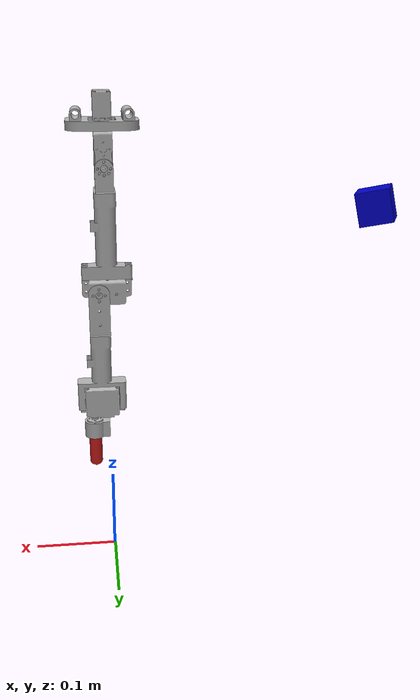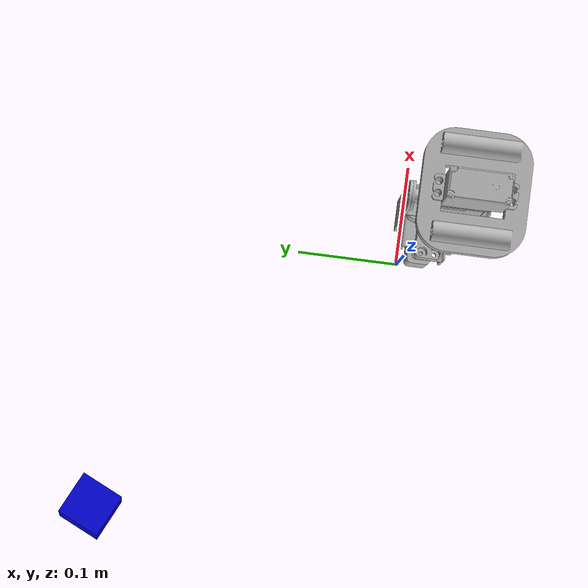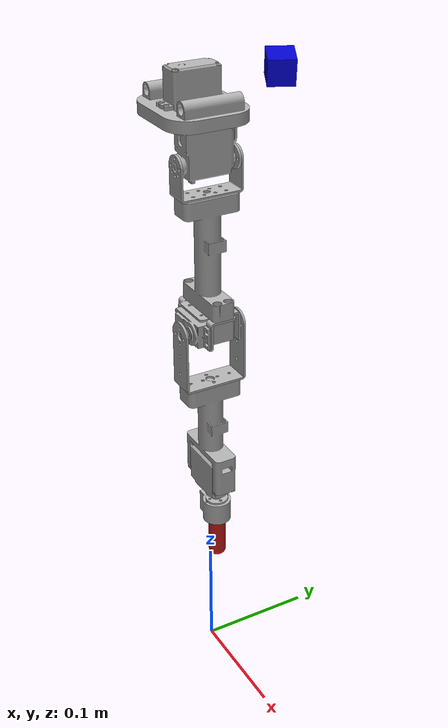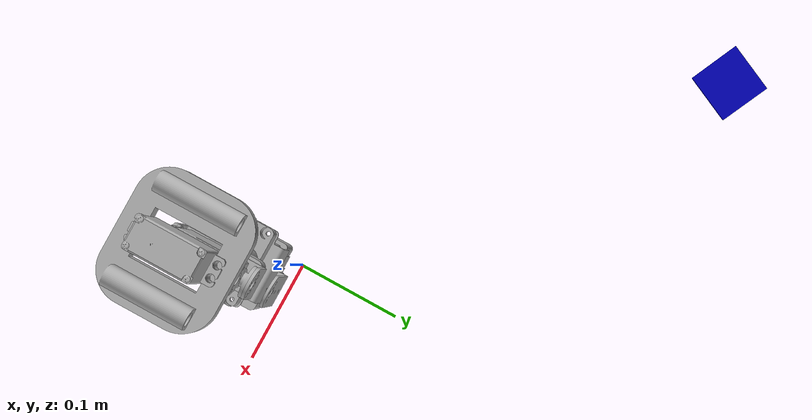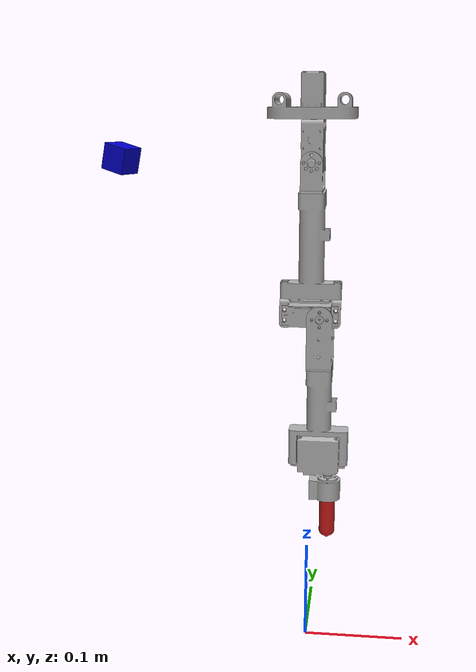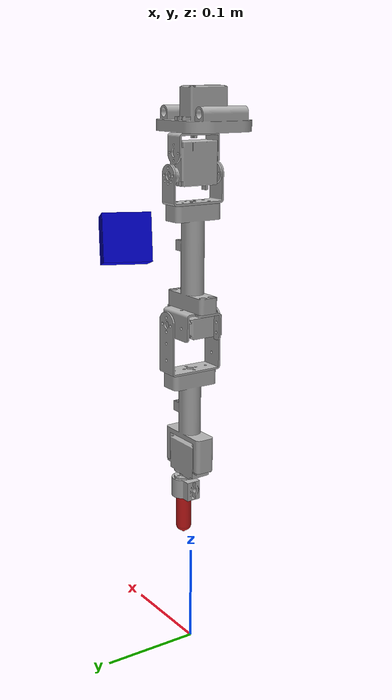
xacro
<?xml version="1.0" ?>
<!-- SINH TỰ ĐỘNG bởi scripts/rl/newarm_make_sim.py — đừng sửa tay. -->
<robot name="newarm" xmlns:xacro="http://www.ros.org/wiki/xacro">

<xacro:arg name="elbow_lower" default="-0.523599"/>
<xacro:arg name="elbow_upper" default="2.617994"/>
<xacro:include filename="$(find visual_servoing)/urdf/newarm/materials.xacro" />
<xacro:include filename="$(find visual_servoing)/urdf/newarm/newarm.ros2_control.xacro" />
<xacro:include filename="$(find visual_servoing)/urdf/newarm/newarm.gazebo.xacro" />

<!-- base_link cố định vào world: trục J1 trùng trục Z world, tay hướng về +X -->
<link name="world"/>
<joint name="world_fixed" type="fixed">
  <origin xyz="0.024973 0.01315 0.1" rpy="0 0 1.570796"/>
  <parent link="world"/>
  <child link="base_link"/>
</joint>

<link name="base_link">
  <inertial>
    <origin xyz="-0.013099 0.035685 0.430136" rpy="0 0 0"/>
    <mass value="0.417679"/>
    <inertia ixx="0.000178" iyy="0.000285" izz="0.000442" ixy="-0" iyz="0" ixz="-0"/>
  </inertial>
  <visual>
    <origin xyz="0 0 0" rpy="0 0 0"/>
    <geometry>
      <mesh filename="package://visual_servoing/meshes/newarm/base_link.stl" scale="0.001 0.001 0.001"/>
    </geometry>
    <material name="silver"/>
  </visual>
</link>

<link name="DigitalServo8120_1">
  <inertial>
    <origin xyz="-0.0039 0.023711 0.010048" rpy="0 0 0"/>
    <mass value="0.252337"/>
    <inertia ixx="6.8e-05" iyy="4.1e-05" izz="4.3e-05" ixy="0" iyz="-1e-06" ixz="0"/>
  </inertial>
  <visual>
    <origin xyz="0.009205 -0.011786 -0.433355" rpy="0 0 0"/>
    <geometry>
      <mesh filename="package://visual_servoing/meshes/newarm/DigitalServo8120_1.stl" scale="0.001 0.001 0.001"/>
    </geometry>
    <material name="silver"/>
  </visual>
</link>

<link name="rds3120_1">
  <inertial>
    <origin xyz="-0.000427 0.000041 -0.022017" rpy="0 0 0"/>
    <mass value="0.0385774"/>
    <inertia ixx="7e-06" iyy="1.3e-05" izz="8e-06" ixy="-0" iyz="0" ixz="-0"/>
  </inertial>
  <visual>
    <origin xyz="0.01315 -0.024973 -0.418382" rpy="0 0 0"/>
    <geometry>
      <mesh filename="package://visual_servoing/meshes/newarm/rds3120_1.stl" scale="0.001 0.001 0.001"/>
    </geometry>
    <material name="silver"/>
  </visual>
</link>

<link name="rds3120_support_1">
  <inertial>
    <origin xyz="-0.0258 0.017355 0" rpy="1.570796 0 0"/>
    <mass value="0.0114569"/>
    <inertia ixx="2e-06" iyy="7e-06" izz="6e-06" ixy="0" iyz="-0" ixz="0"/>
  </inertial>
  <visual>
    <origin xyz="-0.013095 0.385135 -0.024973" rpy="1.570796 0 0"/>
    <geometry>
      <mesh filename="package://visual_servoing/meshes/newarm/rds3120_support_1.stl" scale="0.001 0.001 0.001"/>
    </geometry>
    <material name="silver"/>
  </visual>
</link>

<link name="link1_1">
  <inertial>
    <origin xyz="-0.014829 0.071625 0.026919" rpy="1.570796 0 0"/>
    <mass value="0.458776"/>
    <inertia ixx="0.000573" iyy="0.000566" izz="7.5e-05" ixy="0" iyz="0" ixz="-0"/>
  </inertial>
  <visual>
    <origin xyz="-0.002145 0.380185 0.002027" rpy="1.570796 0 0"/>
    <geometry>
      <mesh filename="package://visual_servoing/meshes/newarm/link1_1.stl" scale="0.001 0.001 0.001"/>
    </geometry>
    <material name="silver"/>
  </visual>
</link>

<link name="Servo_mg996_BracketM_1">
  <inertial>
    <origin xyz="0.017684 0.410153 0.102027" rpy="1.570796 0 0"/>
    <mass value="0.001"/>
    <inertia ixx="1e-08" iyy="1e-08" izz="1e-08" ixy="0" iyz="0" ixz="0"/>
  </inertial>
  <visual>
    <origin xyz="0.017684 0.410153 0.102027" rpy="1.570796 0 0"/>
    <geometry>
      <mesh filename="package://visual_servoing/meshes/newarm/Servo_mg996_BracketM_1.stl" scale="0.001 0.001 0.001"/>
    </geometry>
    <material name="silver"/>
  </visual>
</link>

<link name="MG996R_servo_1">
  <inertial>
    <origin xyz="0.008485 0.11762 0.146787" rpy="1.570796 0 0"/>
    <mass value="0.240069"/>
    <inertia ixx="4e-05" iyy="3.6e-05" izz="6.1e-05" ixy="-1e-06" iyz="0" ixz="0"/>
  </inertial>
  <visual>
    <origin xyz="0.025684 0.360903 0.121897" rpy="1.570796 0 0"/>
    <geometry>
      <mesh filename="package://visual_servoing/meshes/newarm/MG996R_servo_1.stl" scale="0.001 0.001 0.001"/>
    </geometry>
    <material name="silver"/>
  </visual>
</link>

<link name="banhrang_mg996_1">
  <inertial>
    <origin xyz="-0.000674 0.151788 0.131952" rpy="1.570796 0 0"/>
    <mass value="0.001"/>
    <inertia ixx="1e-08" iyy="1e-08" izz="1e-08" ixy="-0" iyz="0" ixz="0"/>
  </inertial>
  <visual>
    <origin xyz="0.041184 0.395053 0.116897" rpy="1.570796 0 0"/>
    <geometry>
      <mesh filename="package://visual_servoing/meshes/newarm/banhrang_mg996_1.stl" scale="0.001 0.001 0.001"/>
    </geometry>
    <material name="silver"/>
  </visual>
</link>

<link name="ServoBracketU_1">
  <inertial>
    <origin xyz="0.043184 0.395053 0.116897" rpy="1.570796 0 0"/>
    <mass value="0.001"/>
    <inertia ixx="1e-08" iyy="1e-08" izz="1e-08" ixy="0" iyz="0" ixz="0"/>
  </inertial>
  <visual>
    <origin xyz="0.043184 0.395053 0.116897" rpy="1.570796 0 0"/>
    <geometry>
      <mesh filename="package://visual_servoing/meshes/newarm/ServoBracketU_1.stl" scale="0.001 0.001 0.001"/>
    </geometry>
    <material name="silver"/>
  </visual>
</link>

<link name="link2_1">
  <inertial>
    <origin xyz="-0.018589 0.241827 0.182058" rpy="1.570796 0 0"/>
    <mass value="0.399605"/>
    <inertia ixx="0.000416" iyy="0.000382" izz="0.0001" ixy="0" iyz="3e-06" ixz="-0"/>
  </inertial>
  <visual>
    <origin xyz="-0.001416 0.395053 0.166897" rpy="1.570796 0 0"/>
    <geometry>
      <mesh filename="package://visual_servoing/meshes/newarm/link2_1.stl" scale="0.001 0.001 0.001"/>
    </geometry>
    <material name="silver"/>
  </visual>
</link>

<link name="MG996R_servo__1__1">
  <inertial>
    <origin xyz="0.004982 0.317464 0.281776" rpy="1.570796 0 0"/>
    <mass value="0.240069"/>
    <inertia ixx="6.1e-05" iyy="3.6e-05" izz="4e-05" ixy="-0" iyz="-1e-06" ixz="-0"/>
  </inertial>
  <visual>
    <origin xyz="0.022169 0.419214 0.266897" rpy="1.570796 0 0"/>
    <geometry>
      <mesh filename="package://visual_servoing/meshes/newarm/MG996R_servo__1__1.stl" scale="0.001 0.001 0.001"/>
    </geometry>
    <material name="silver"/>
  </visual>
</link>

<link name="banhrang_mg996__1__1">
  <inertial>
    <origin xyz="0 0.327973 0.287441" rpy="1.570796 0 0"/>
    <mass value="0.001"/>
    <inertia ixx="1e-08" iyy="1e-08" izz="1e-08" ixy="0" iyz="-0" ixz="-0"/>
  </inertial>
  <visual>
    <origin xyz="0.017169 0.405064 0.282397" rpy="1.570796 0 0"/>
    <geometry>
      <mesh filename="package://visual_servoing/meshes/newarm/banhrang_mg996__1__1.stl" scale="0.001 0.001 0.001"/>
    </geometry>
    <material name="silver"/>
  </visual>
</link>

<link name="hopbut_1">
  <inertial>
    <origin xyz="-0.000015 0.339299 0.291792" rpy="1.570796 0 0"/>
    <mass value="0.0513438"/>
    <inertia ixx="6e-06" iyy="4e-06" izz="7e-06" ixy="0" iyz="-0" ixz="-0"/>
  </inertial>
  <visual>
    <origin xyz="0.017169 0.405064 0.284397" rpy="1.570796 0 0"/>
    <geometry>
      <mesh filename="package://visual_servoing/meshes/newarm/hopbut_1.stl" scale="0.001 0.001 0.001"/>
    </geometry>
    <material name="silver"/>
  </visual>
</link>

<link name="but_1">
  <inertial>
    <origin xyz="0.017169 0.368859 0.345206" rpy="1.570796 0 0"/>
    <mass value="0.0725632"/>
    <inertia ixx="1.6e-05" iyy="1.6e-05" izz="2e-06" ixy="-0" iyz="-0" ixz="0"/>
  </inertial>
  <visual>
    <origin xyz="0.034338 0.410108 0.340162" rpy="1.570796 0 0"/>
    <geometry>
      <mesh filename="package://visual_servoing/meshes/newarm/but_1.stl" scale="0.001 0.001 0.001"/>
    </geometry>
    <material name="pen_red"/>
  </visual>
</link>

<joint name="rigid_1" type="fixed">
  <origin xyz="-0.009205 0.011786 0.433355" rpy="0 0 0"/>
  <parent link="base_link"/>
  <child link="DigitalServo8120_1"/>
</joint>

<joint name="base" type="revolute">
  <origin xyz="-0.003945 0.013187 -0.014973" rpy="0 0 0"/>
  <parent link="DigitalServo8120_1"/>
  <child link="rds3120_1"/>
  <axis xyz="0 0 -1"/>
  <limit lower="-1.570796" upper="1.570796" effort="100" velocity="100"/>
</joint>

<joint name="shoulder" type="revolute">
  <origin xyz="0.026245 0 -0.033247" rpy="0 0 0"/>
  <parent link="rds3120_1"/>
  <child link="rds3120_support_1"/>
  <axis xyz="-1 0 0"/>
  <limit lower="-1.570796" upper="1.570796" effort="100" velocity="100"/>
</joint>

<joint name="rigid_4" type="fixed">
  <origin xyz="-0.01095 0.00495 -0.027" rpy="0 0 0"/>
  <parent link="rds3120_support_1"/>
  <child link="link1_1"/>
</joint>

<joint name="rigid_5" type="fixed">
  <origin xyz="-0.019829 -0.029968 -0.1" rpy="0 0 0"/>
  <parent link="link1_1"/>
  <child link="Servo_mg996_BracketM_1"/>
</joint>

<joint name="rigid_6" type="fixed">
  <origin xyz="-0.008 0.04925 -0.01987" rpy="0 0 0"/>
  <parent link="Servo_mg996_BracketM_1"/>
  <child link="MG996R_servo_1"/>
</joint>

<joint name="elbow" type="revolute">
  <origin xyz="-0.0155 -0.03415 0.005" rpy="0 0 0"/>
  <parent link="MG996R_servo_1"/>
  <child link="banhrang_mg996_1"/>
  <axis xyz="-1 0 0"/>
  <limit lower="$(arg elbow_lower)" upper="$(arg elbow_upper)" effort="100" velocity="100"/>
</joint>

<joint name="rigid_8" type="fixed">
  <origin xyz="-0.002 0 0" rpy="0 0 0"/>
  <parent link="banhrang_mg996_1"/>
  <child link="ServoBracketU_1"/>
</joint>

<joint name="rigid_22" type="fixed">
  <origin xyz="0.0446 0 -0.05" rpy="0 0 0"/>
  <parent link="ServoBracketU_1"/>
  <child link="link2_1"/>
</joint>

<joint name="rigid_23" type="fixed">
  <origin xyz="-0.023585 -0.024161 -0.1" rpy="0 0 0"/>
  <parent link="link2_1"/>
  <child link="MG996R_servo__1__1"/>
</joint>

<joint name="wrist_roll" type="revolute">
  <origin xyz="0.005 0.01415 -0.0155" rpy="0 0 0"/>
  <parent link="MG996R_servo__1__1"/>
  <child link="banhrang_mg996__1__1"/>
  <axis xyz="0 0 -1"/>
  <limit lower="-1.570796" upper="1.570796" effort="100" velocity="100"/>
</joint>

<joint name="rigid_25" type="fixed">
  <origin xyz="0 0 -0.002" rpy="0 0 0"/>
  <parent link="banhrang_mg996__1__1"/>
  <child link="hopbut_1"/>
</joint>

<joint name="rigid_26" type="fixed">
  <origin xyz="-0.017169 -0.005044 -0.055765" rpy="0 0 0"/>
  <parent link="hopbut_1"/>
  <child link="but_1"/>
</joint>

<!-- Đầu bút = hopbut_1 + fk_newarm.TOOL_OFFSET (để so TF với FK) -->
<link name="pen_tip"/>
<joint name="pen_tip_fixed" type="fixed">
  <origin xyz="0 0 -0.0625" rpy="0 0 0"/>
  <parent link="hopbut_1"/>
  <child link="pen_tip"/>
</joint>

<!-- Camera cố định (eye-to-hand), nhìn vào tâm bảng -->
<link name="camera_link">
  <inertial>
    <mass value="0.01"/>
    <inertia ixx="1e-05" iyy="1e-05" izz="1e-05" ixy="0" iyz="0" ixz="0"/>
  </inertial>
  <visual>
    <geometry><box size="0.03 0.03 0.03"/></geometry>
    <material name="camera_blue"/>
  </visual>
</link>
<joint name="camera_joint" type="fixed">
  <origin xyz="0.2 0.26 0.375382" rpy="0 0.232061 -2.007996"/>
  <parent link="base_link"/>
  <child link="camera_link"/>
</joint>
<link name="camera_optical_link"/>
<!-- Khung quang học: z ra trước, x sang phải, y xuống -->
<joint name="camera_optical_joint" type="fixed">
  <origin xyz="0 0 0" rpy="-1.5708 0 -1.5708"/>
  <parent link="camera_link"/>
  <child link="camera_optical_link"/>
</joint>

</robot>

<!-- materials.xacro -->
<robot name="newarm" xmlns:xacro="http://www.ros.org/wiki/xacro" >
<material name="silver"><color rgba="0.700 0.700 0.700 1.000"/></material>
<material name="pen_red"><color rgba="0.800 0.100 0.100 1.000"/></material>
<material name="camera_blue"><color rgba="0 0 0.8 1"/></material>
</robot>
